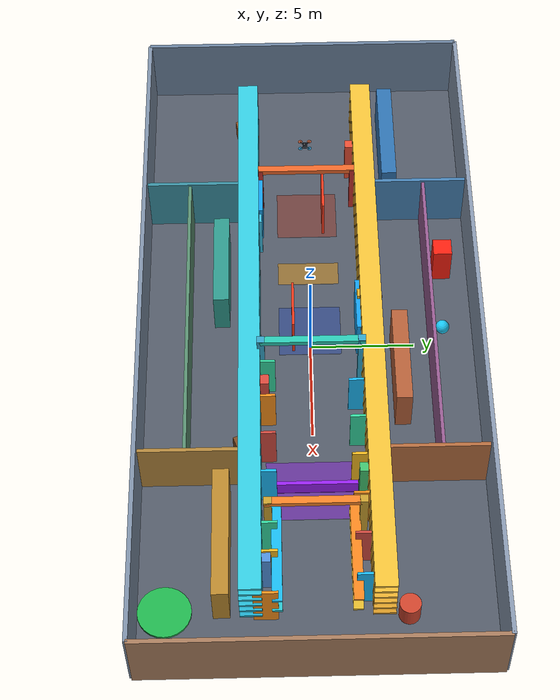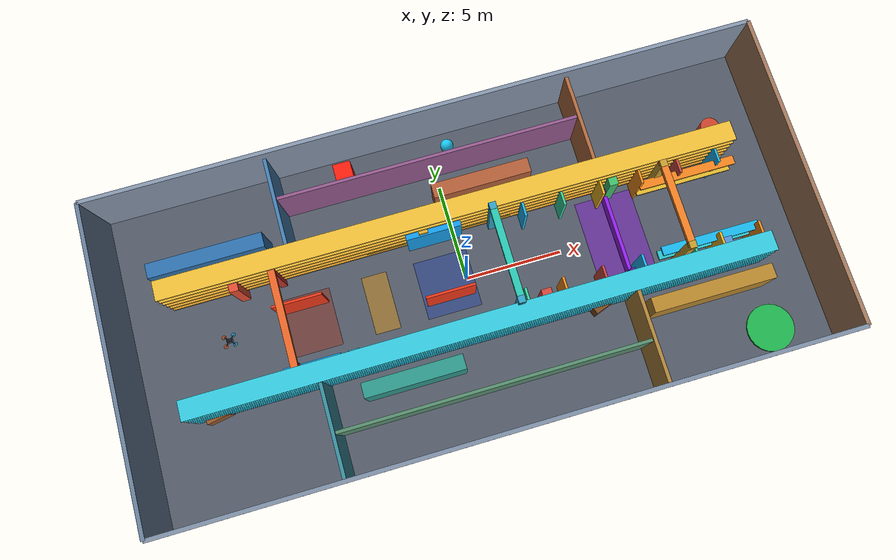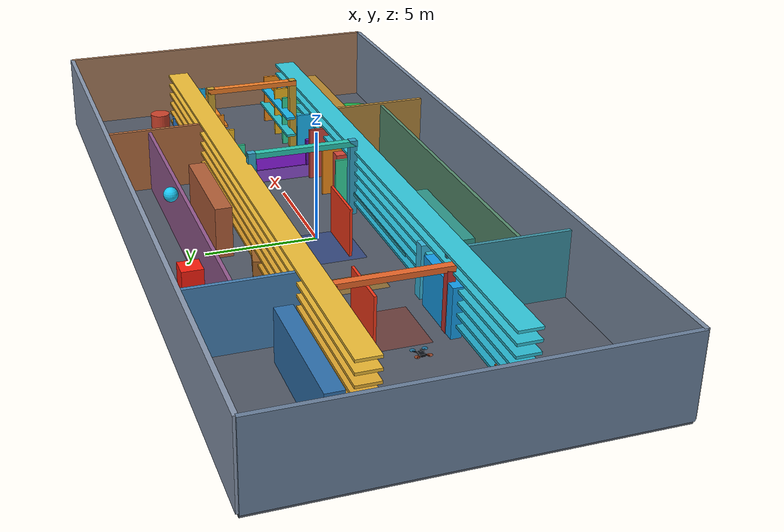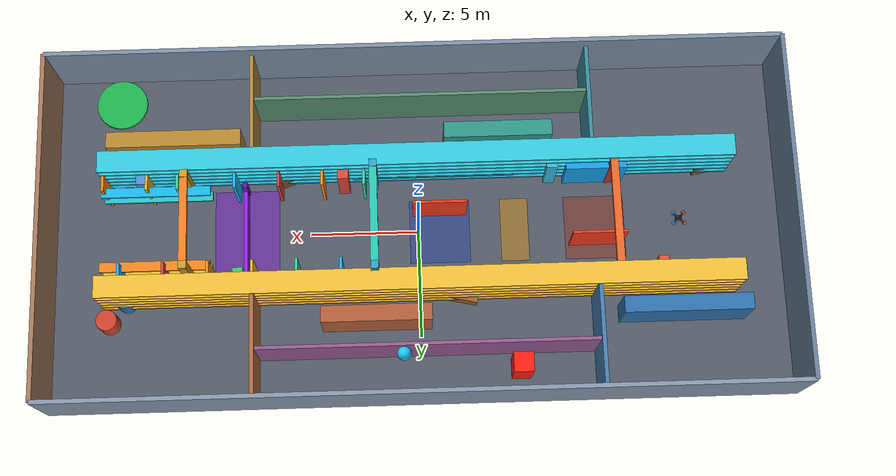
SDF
<sdf version="1.10">
 <world name="xq_complex_3d_warehouse">
  <model name="xq_complex_3d_shell">
   <static>true</static>
   <link name="shell">
    <collision name="floor_c">
     <pose>0 0 -0.08 0 0 0</pose>
     <geometry><box><size>34 16 0.16</size></box></geometry>
    </collision>
    <visual name="floor_v">
     <pose>0 0 -0.08 0 0 0</pose>
     <geometry><box><size>34 16 0.16</size></box></geometry>
     <material><diffuse>0.32 0.35 0.40 1</diffuse><specular>0.12 0.12 0.12 1</specular></material>
    </visual>
    <collision name="north_wall_c">
     <pose>0 8 1.8 0 0 0</pose>
     <geometry><box><size>34 0.20 3.6</size></box></geometry>
    </collision>
    <visual name="north_wall_v">
     <pose>0 8 1.8 0 0 0</pose>
     <geometry><box><size>34 0.20 3.6</size></box></geometry>
     <material><diffuse>0.53 0.59 0.68 1</diffuse></material>
    </visual>
    <collision name="south_wall_c">
     <pose>0 -8 1.8 0 0 0</pose>
     <geometry><box><size>34 0.20 3.6</size></box></geometry>
    </collision>
    <visual name="south_wall_v">
     <pose>0 -8 1.8 0 0 0</pose>
     <geometry><box><size>34 0.20 3.6</size></box></geometry>
     <material><diffuse>0.49 0.56 0.65 1</diffuse></material>
    </visual>
    <collision name="west_wall_c">
     <pose>-17 0 1.8 0 0 0</pose>
     <geometry><box><size>0.20 16 3.6</size></box></geometry>
    </collision>
    <visual name="west_wall_v">
     <pose>-17 0 1.8 0 0 0</pose>
     <geometry><box><size>0.20 16 3.6</size></box></geometry>
     <material><diffuse>0.41 0.50 0.61 1</diffuse></material>
    </visual>
    <collision name="east_wall_c">
     <pose>17 0 1.8 0 0 0</pose>
     <geometry><box><size>0.20 16 3.6</size></box></geometry>
    </collision>
    <visual name="east_wall_v">
     <pose>17 0 1.8 0 0 0</pose>
     <geometry><box><size>0.20 16 3.6</size></box></geometry>
     <material><diffuse>0.65 0.48 0.36 1</diffuse></material>
    </visual>
    <collision name="nw_partition_c">
     <pose>-8.0 5.25 1.5 0 0 0</pose>
     <geometry><box><size>0.18 5.3 3.0</size></box></geometry>
    </collision>
    <visual name="nw_partition_v">
     <pose>-8.0 5.25 1.5 0 0 0</pose>
     <geometry><box><size>0.18 5.3 3.0</size></box></geometry>
     <material><diffuse>0.27 0.50 0.70 1</diffuse></material>
    </visual>
    <collision name="sw_partition_c">
     <pose>-8.0 -5.25 1.5 0 0 0</pose>
     <geometry><box><size>0.18 5.3 3.0</size></box></geometry>
    </collision>
    <visual name="sw_partition_v">
     <pose>-8.0 -5.25 1.5 0 0 0</pose>
     <geometry><box><size>0.18 5.3 3.0</size></box></geometry>
     <material><diffuse>0.22 0.55 0.62 1</diffuse></material>
    </visual>
    <collision name="ne_partition_c">
     <pose>7.5 5.25 1.5 0 0 0</pose>
     <geometry><box><size>0.18 5.3 3.0</size></box></geometry>
    </collision>
    <visual name="ne_partition_v">
     <pose>7.5 5.25 1.5 0 0 0</pose>
     <geometry><box><size>0.18 5.3 3.0</size></box></geometry>
     <material><diffuse>0.70 0.42 0.24 1</diffuse></material>
    </visual>
    <collision name="se_partition_c">
     <pose>7.5 -5.25 1.5 0 0 0</pose>
     <geometry><box><size>0.18 5.3 3.0</size></box></geometry>
    </collision>
    <visual name="se_partition_v">
     <pose>7.5 -5.25 1.5 0 0 0</pose>
     <geometry><box><size>0.18 5.3 3.0</size></box></geometry>
     <material><diffuse>0.69 0.52 0.23 1</diffuse></material>
    </visual>
    <collision name="north_crosswall_c">
     <pose>-0.25 5.8 1.45 0 0 0</pose>
     <geometry><box><size>15.3 0.16 2.9</size></box></geometry>
    </collision>
    <visual name="north_crosswall_v">
     <pose>-0.25 5.8 1.45 0 0 0</pose>
     <geometry><box><size>15.3 0.16 2.9</size></box></geometry>
     <material><diffuse>0.58 0.35 0.56 1</diffuse></material>
    </visual>
    <collision name="south_crosswall_c">
     <pose>-0.25 -5.8 1.45 0 0 0</pose>
     <geometry><box><size>15.3 0.16 2.9</size></box></geometry>
    </collision>
    <visual name="south_crosswall_v">
     <pose>-0.25 -5.8 1.45 0 0 0</pose>
     <geometry><box><size>15.3 0.16 2.9</size></box></geometry>
     <material><diffuse>0.34 0.55 0.43 1</diffuse></material>
    </visual>
    <collision name="north_lower_observation_rack_c">
     <pose>0 2.90 0.55 0 0 0</pose>
     <geometry><box><size>29.0 1.00 0.12</size></box></geometry>
    </collision>
    <visual name="north_lower_observation_rack_v">
     <pose>0 2.90 0.55 0 0 0</pose>
     <geometry><box><size>29.0 1.00 0.12</size></box></geometry>
     <material><diffuse>0.82 0.58 0.14 1</diffuse></material>
    </visual>
    <collision name="south_lower_observation_rack_c">
     <pose>0 -2.90 0.55 0 0 0</pose>
     <geometry><box><size>29.0 1.00 0.12</size></box></geometry>
    </collision>
    <visual name="south_lower_observation_rack_v">
     <pose>0 -2.90 0.55 0 0 0</pose>
     <geometry><box><size>29.0 1.00 0.12</size></box></geometry>
     <material><diffuse>0.12 0.66 0.78 1</diffuse></material>
    </visual>
    <collision name="north_lower_middle_observation_rack_c">
     <pose>0 2.90 1.05 0 0 0</pose>
     <geometry><box><size>29.0 1.00 0.12</size></box></geometry>
    </collision>
    <visual name="north_lower_middle_observation_rack_v">
     <pose>0 2.90 1.05 0 0 0</pose>
     <geometry><box><size>29.0 1.00 0.12</size></box></geometry>
     <material><diffuse>0.85 0.62 0.16 1</diffuse></material>
    </visual>
    <collision name="south_lower_middle_observation_rack_c">
     <pose>0 -2.90 1.05 0 0 0</pose>
     <geometry><box><size>29.0 1.00 0.12</size></box></geometry>
    </collision>
    <visual name="south_lower_middle_observation_rack_v">
     <pose>0 -2.90 1.05 0 0 0</pose>
     <geometry><box><size>29.0 1.00 0.12</size></box></geometry>
     <material><diffuse>0.14 0.69 0.80 1</diffuse></material>
    </visual>
    <collision name="north_middle_observation_rack_c">
     <pose>0 2.90 1.55 0 0 0</pose>
     <geometry><box><size>29.0 1.00 0.12</size></box></geometry>
    </collision>
    <visual name="north_middle_observation_rack_v">
     <pose>0 2.90 1.55 0 0 0</pose>
     <geometry><box><size>29.0 1.00 0.12</size></box></geometry>
     <material><diffuse>0.88 0.65 0.18 1</diffuse></material>
    </visual>
    <collision name="south_middle_observation_rack_c">
     <pose>0 -2.90 1.55 0 0 0</pose>
     <geometry><box><size>29.0 1.00 0.12</size></box></geometry>
    </collision>
    <visual name="south_middle_observation_rack_v">
     <pose>0 -2.90 1.55 0 0 0</pose>
     <geometry><box><size>29.0 1.00 0.12</size></box></geometry>
     <material><diffuse>0.15 0.72 0.82 1</diffuse></material>
    </visual>
    <collision name="north_upper_middle_observation_rack_c">
     <pose>0 2.90 2.05 0 0 0</pose>
     <geometry><box><size>29.0 1.00 0.12</size></box></geometry>
    </collision>
    <visual name="north_upper_middle_observation_rack_v">
     <pose>0 2.90 2.05 0 0 0</pose>
     <geometry><box><size>29.0 1.00 0.12</size></box></geometry>
     <material><diffuse>0.90 0.68 0.19 1</diffuse></material>
    </visual>
    <collision name="south_upper_middle_observation_rack_c">
     <pose>0 -2.90 2.05 0 0 0</pose>
     <geometry><box><size>29.0 1.00 0.12</size></box></geometry>
    </collision>
    <visual name="south_upper_middle_observation_rack_v">
     <pose>0 -2.90 2.05 0 0 0</pose>
     <geometry><box><size>29.0 1.00 0.12</size></box></geometry>
     <material><diffuse>0.17 0.74 0.83 1</diffuse></material>
    </visual>
    <collision name="north_upper_observation_rack_c">
     <pose>0 2.90 2.55 0 0 0</pose>
     <geometry><box><size>29.0 1.00 0.12</size></box></geometry>
    </collision>
    <visual name="north_upper_observation_rack_v">
     <pose>0 2.90 2.55 0 0 0</pose>
     <geometry><box><size>29.0 1.00 0.12</size></box></geometry>
     <material><diffuse>0.92 0.72 0.20 1</diffuse></material>
    </visual>
    <collision name="south_upper_observation_rack_c">
     <pose>0 -2.90 2.55 0 0 0</pose>
     <geometry><box><size>29.0 1.00 0.12</size></box></geometry>
    </collision>
    <visual name="south_upper_observation_rack_v">
     <pose>0 -2.90 2.55 0 0 0</pose>
     <geometry><box><size>29.0 1.00 0.12</size></box></geometry>
     <material><diffuse>0.18 0.76 0.84 1</diffuse></material>
    </visual>
    <collision name="north_high_observation_rack_c">
     <pose>0 2.90 3.05 0 0 0</pose>
     <geometry><box><size>29.0 1.00 0.12</size></box></geometry>
    </collision>
    <visual name="north_high_observation_rack_v">
     <pose>0 2.90 3.05 0 0 0</pose>
     <geometry><box><size>29.0 1.00 0.12</size></box></geometry>
     <material><diffuse>0.94 0.75 0.22 1</diffuse></material>
    </visual>
    <collision name="south_high_observation_rack_c">
     <pose>0 -2.90 3.05 0 0 0</pose>
     <geometry><box><size>29.0 1.00 0.12</size></box></geometry>
    </collision>
    <visual name="south_high_observation_rack_v">
     <pose>0 -2.90 3.05 0 0 0</pose>
     <geometry><box><size>29.0 1.00 0.12</size></box></geometry>
     <material><diffuse>0.20 0.79 0.87 1</diffuse></material>
    </visual>
    <collision name="north_observation_shelf_c">
     <pose>1.0 2.60 0.99 0 0 0</pose>
     <geometry><box><size>4.0 0.45 0.12</size></box></geometry>
    </collision>
    <visual name="north_observation_shelf_v">
     <pose>1.0 2.60 0.99 0 0 0</pose>
     <geometry><box><size>4.0 0.45 0.12</size></box></geometry>
     <material><diffuse>0.82 0.72 0.22 1</diffuse></material>
    </visual>
    <collision name="south_observation_shelf_c">
     <pose>1.0 -2.60 0.99 0 0 0</pose>
     <geometry><box><size>4.0 0.45 0.12</size></box></geometry>
    </collision>
    <visual name="south_observation_shelf_v">
     <pose>1.0 -2.60 0.99 0 0 0</pose>
     <geometry><box><size>4.0 0.45 0.12</size></box></geometry>
     <material><diffuse>0.24 0.72 0.78 1</diffuse></material>
    </visual>
    <collision name="north_midwest_observation_shelf_c">
     <pose>-2.75 2.60 0.99 0 0 0</pose>
     <geometry><box><size>3.50 0.45 0.12</size></box></geometry>
    </collision>
    <visual name="north_midwest_observation_shelf_v">
     <pose>-2.75 2.60 0.99 0 0 0</pose>
     <geometry><box><size>3.50 0.45 0.12</size></box></geometry>
     <material><diffuse>0.84 0.70 0.18 1</diffuse></material>
    </visual>
    <collision name="south_midwest_observation_shelf_c">
     <pose>-2.75 -2.60 0.99 0 0 0</pose>
     <geometry><box><size>3.50 0.45 0.12</size></box></geometry>
    </collision>
    <visual name="south_midwest_observation_shelf_v">
     <pose>-2.75 -2.60 0.99 0 0 0</pose>
     <geometry><box><size>3.50 0.45 0.12</size></box></geometry>
     <material><diffuse>0.18 0.72 0.78 1</diffuse></material>
    </visual>
    <collision name="north_x_board1_c">
     <pose>3.55 2.25 1.25 0 0 0</pose>
     <geometry><box><size>0.12 1.10 2.50</size></box></geometry>
    </collision>
    <visual name="north_x_board1_v">
     <pose>3.55 2.25 1.25 0 0 0</pose>
     <geometry><box><size>0.12 1.10 2.50</size></box></geometry>
     <material><diffuse>0.10 0.72 0.96 1</diffuse><emissive>0.01 0.08 0.14 1</emissive></material>
    </visual>
    <collision name="south_x_board0_c">
     <pose>2.45 -2.25 1.25 0 0 0</pose>
     <geometry><box><size>0.12 1.10 2.50</size></box></geometry>
    </collision>
    <visual name="south_x_board0_v">
     <pose>2.45 -2.25 1.25 0 0 0</pose>
     <geometry><box><size>0.12 1.10 2.50</size></box></geometry>
     <material><diffuse>0.20 0.84 0.62 1</diffuse><emissive>0.01 0.12 0.07 1</emissive></material>
    </visual>
    <collision name="south_x_board1_c">
     <pose>4.35 -2.25 1.25 0 0 0</pose>
     <geometry><box><size>0.12 1.10 2.50</size></box></geometry>
    </collision>
    <visual name="south_x_board1_v">
     <pose>4.35 -2.25 1.25 0 0 0</pose>
     <geometry><box><size>0.12 1.10 2.50</size></box></geometry>
     <material><diffuse>0.96 0.56 0.10 1</diffuse><emissive>0.14 0.05 0.01 1</emissive></material>
    </visual>
    <collision name="north_x_board2_c">
     <pose>5.55 2.25 1.25 0 0 0</pose>
     <geometry><box><size>0.12 1.10 2.50</size></box></geometry>
    </collision>
    <visual name="north_x_board2_v">
     <pose>5.55 2.25 1.25 0 0 0</pose>
     <geometry><box><size>0.12 1.10 2.50</size></box></geometry>
     <material><diffuse>0.20 0.84 0.62 1</diffuse><emissive>0.01 0.12 0.07 1</emissive></material>
    </visual>
    <collision name="south_x_board2_c">
     <pose>6.35 -2.25 1.25 0 0 0</pose>
     <geometry><box><size>0.12 1.10 2.50</size></box></geometry>
    </collision>
    <visual name="south_x_board2_v">
     <pose>6.35 -2.25 1.25 0 0 0</pose>
     <geometry><box><size>0.12 1.10 2.50</size></box></geometry>
     <material><diffuse>0.80 0.28 0.24 1</diffuse><emissive>0.10 0.02 0.02 1</emissive></material>
    </visual>
    <collision name="north_x_board3_c">
     <pose>7.55 2.25 1.25 0 0 0</pose>
     <geometry><box><size>0.12 1.10 2.50</size></box></geometry>
    </collision>
    <visual name="north_x_board3_v">
     <pose>7.55 2.25 1.25 0 0 0</pose>
     <geometry><box><size>0.12 1.10 2.50</size></box></geometry>
     <material><diffuse>0.94 0.72 0.12 1</diffuse><emissive>0.12 0.08 0.01 1</emissive></material>
    </visual>
    <collision name="south_x_board3_c">
     <pose>8.35 -2.25 1.25 0 0 0</pose>
     <geometry><box><size>0.12 1.10 2.50</size></box></geometry>
    </collision>
    <visual name="south_x_board3_v">
     <pose>8.35 -2.25 1.25 0 0 0</pose>
     <geometry><box><size>0.12 1.10 2.50</size></box></geometry>
     <material><diffuse>0.10 0.72 0.96 1</diffuse><emissive>0.01 0.08 0.14 1</emissive></material>
    </visual>
    <collision name="north_x_board4_c">
     <pose>9.55 2.25 1.25 0 0 0</pose>
     <geometry><box><size>0.12 1.10 2.50</size></box></geometry>
    </collision>
    <visual name="north_x_board4_v">
     <pose>9.55 2.25 1.25 0 0 0</pose>
     <geometry><box><size>0.12 1.10 2.50</size></box></geometry>
     <material><diffuse>0.96 0.56 0.10 1</diffuse><emissive>0.14 0.05 0.01 1</emissive></material>
    </visual>
    <collision name="south_x_board4_c">
     <pose>10.95 -2.25 1.25 0 0 0</pose>
     <geometry><box><size>0.12 1.10 2.50</size></box></geometry>
    </collision>
    <visual name="south_x_board4_v">
     <pose>10.95 -2.25 1.25 0 0 0</pose>
     <geometry><box><size>0.12 1.10 2.50</size></box></geometry>
     <material><diffuse>0.20 0.84 0.62 1</diffuse><emissive>0.01 0.12 0.07 1</emissive></material>
    </visual>
    <collision name="north_x_board5_c">
     <pose>11.55 2.25 1.25 0 0 0</pose>
     <geometry><box><size>0.12 1.10 2.50</size></box></geometry>
    </collision>
    <visual name="north_x_board5_v">
     <pose>11.55 2.25 1.25 0 0 0</pose>
     <geometry><box><size>0.12 1.10 2.50</size></box></geometry>
     <material><diffuse>0.80 0.28 0.24 1</diffuse><emissive>0.10 0.02 0.02 1</emissive></material>
    </visual>
    <collision name="south_x_board5_c">
     <pose>12.35 -2.25 1.25 0 0 0</pose>
     <geometry><box><size>0.12 1.10 2.50</size></box></geometry>
    </collision>
    <visual name="south_x_board5_v">
     <pose>12.35 -2.25 1.25 0 0 0</pose>
     <geometry><box><size>0.12 1.10 2.50</size></box></geometry>
     <material><diffuse>0.94 0.72 0.12 1</diffuse><emissive>0.12 0.08 0.01 1</emissive></material>
    </visual>
    <collision name="north_x_board6_c">
     <pose>13.55 2.25 1.25 0 0 0</pose>
     <geometry><box><size>0.12 1.10 2.50</size></box></geometry>
    </collision>
    <visual name="north_x_board6_v">
     <pose>13.55 2.25 1.25 0 0 0</pose>
     <geometry><box><size>0.12 1.10 2.50</size></box></geometry>
     <material><diffuse>0.10 0.72 0.96 1</diffuse><emissive>0.01 0.08 0.14 1</emissive></material>
    </visual>
    <collision name="south_x_board6_c">
     <pose>14.35 -2.25 1.25 0 0 0</pose>
     <geometry><box><size>0.12 1.10 2.50</size></box></geometry>
    </collision>
    <visual name="south_x_board6_v">
     <pose>14.35 -2.25 1.25 0 0 0</pose>
     <geometry><box><size>0.12 1.10 2.50</size></box></geometry>
     <material><diffuse>0.96 0.56 0.10 1</diffuse><emissive>0.14 0.05 0.01 1</emissive></material>
    </visual>
    <collision name="north_final_observation_shelf_c">
     <pose>12.0 1.75 0.99 0 0 0</pose>
     <geometry><box><size>5.0 0.45 0.12</size></box></geometry>
    </collision>
    <visual name="north_final_observation_shelf_v">
     <pose>12.0 1.75 0.99 0 0 0</pose>
     <geometry><box><size>5.0 0.45 0.12</size></box></geometry>
     <material><diffuse>0.88 0.72 0.18 1</diffuse></material>
    </visual>
    <collision name="south_final_observation_shelf_c">
     <pose>12.0 -1.75 0.99 0 0 0</pose>
     <geometry><box><size>5.0 0.45 0.12</size></box></geometry>
    </collision>
    <visual name="south_final_observation_shelf_v">
     <pose>12.0 -1.75 0.99 0 0 0</pose>
     <geometry><box><size>5.0 0.45 0.12</size></box></geometry>
     <material><diffuse>0.16 0.76 0.80 1</diffuse></material>
    </visual>
    <collision name="north_final_upper_observation_shelf_c">
     <pose>12.0 1.75 1.90 0 0 0</pose>
     <geometry><box><size>5.0 0.45 0.12</size></box></geometry>
    </collision>
    <visual name="north_final_upper_observation_shelf_v">
     <pose>12.0 1.75 1.90 0 0 0</pose>
     <geometry><box><size>5.0 0.45 0.12</size></box></geometry>
     <material><diffuse>0.95 0.52 0.12 1</diffuse></material>
    </visual>
    <collision name="south_final_upper_observation_shelf_c">
     <pose>12.0 -1.75 1.90 0 0 0</pose>
     <geometry><box><size>5.0 0.45 0.12</size></box></geometry>
    </collision>
    <visual name="south_final_upper_observation_shelf_v">
     <pose>12.0 -1.75 1.90 0 0 0</pose>
     <geometry><box><size>5.0 0.45 0.12</size></box></geometry>
     <material><diffuse>0.10 0.72 0.92 1</diffuse></material>
    </visual>
    <collision name="integrity_panel_west_c">
     <pose>-8.25 0.81 1.20 0 0 0</pose>
     <geometry><box><size>2.50 0.12 2.20</size></box></geometry>
    </collision>
    <visual name="integrity_panel_west_v">
     <pose>-8.25 0.81 1.20 0 0 0</pose>
     <geometry><box><size>2.50 0.12 2.20</size></box></geometry>
     <material><diffuse>0.96 0.22 0.10 1</diffuse><emissive>0.16 0.02 0.01 1</emissive></material>
    </visual>
    <collision name="geometry_fins_west_c">
     <pose>-8.25 -2.43 1.10 0 0 0</pose>
     <geometry><box><size>2.80 0.45 2.20</size></box></geometry>
    </collision>
    <visual name="geometry_fins_west_v">
     <pose>-8.25 -2.43 1.10 0 0 0</pose>
     <geometry><box><size>2.80 0.45 2.20</size></box></geometry>
     <material><diffuse>0.08 0.62 0.92 1</diffuse><emissive>0.01 0.08 0.16 1</emissive></material>
    </visual>
    <collision name="integrity_panel_east_c">
     <pose>-1.0 -0.81 1.20 0 0 0</pose>
     <geometry><box><size>2.50 0.12 2.20</size></box></geometry>
    </collision>
    <visual name="integrity_panel_east_v">
     <pose>-1.0 -0.81 1.20 0 0 0</pose>
     <geometry><box><size>2.50 0.12 2.20</size></box></geometry>
     <material><diffuse>0.96 0.22 0.10 1</diffuse><emissive>0.16 0.02 0.01 1</emissive></material>
    </visual>
    <collision name="geometry_fins_east_c">
     <pose>-1.0 2.43 1.10 0 0 0</pose>
     <geometry><box><size>2.80 0.45 2.20</size></box></geometry>
    </collision>
    <visual name="geometry_fins_east_v">
     <pose>-1.0 2.43 1.10 0 0 0</pose>
     <geometry><box><size>2.80 0.45 2.20</size></box></geometry>
     <material><diffuse>0.08 0.62 0.92 1</diffuse><emissive>0.01 0.08 0.16 1</emissive></material>
    </visual>
    <visual name="west_integrity_zone_v">
     <pose>-8.25 0 0.015 0 0 0</pose>
     <geometry><box><size>2.8 3.0 0.018</size></box></geometry>
     <material><diffuse>0.60 0.16 0.08 0.44</diffuse><emissive>0.07 0.01 0.00 1</emissive></material>
    </visual>
    <visual name="dynamic_crossing_zone_v">
     <pose>-4.5 0 0.016 0 0 0</pose>
     <geometry><box><size>1.3 3.0 0.020</size></box></geometry>
     <material><diffuse>0.86 0.56 0.04 0.48</diffuse><emissive>0.10 0.05 0.00 1</emissive></material>
    </visual>
    <visual name="east_integrity_zone_v">
     <pose>-1.0 0 0.015 0 0 0</pose>
     <geometry><box><size>2.8 3.0 0.018</size></box></geometry>
     <material><diffuse>0.10 0.24 0.66 0.44</diffuse><emissive>0.01 0.03 0.10 1</emissive></material>
    </visual>
    <collision name="spatial_integrity_hurdle_c">
     <pose>8.00 0 0.375 0 0 0</pose>
     <geometry><box><size>0.18 4.00 0.75</size></box></geometry>
    </collision>
    <visual name="spatial_integrity_hurdle_v">
     <pose>8.00 0 0.375 0 0 0</pose>
     <geometry><box><size>0.18 4.00 0.75</size></box></geometry>
     <material><diffuse>0.58 0.12 0.92 1</diffuse><emissive>0.12 0.01 0.24 1</emissive></material>
    </visual>
    <collision name="spatial_deck_north_leg_c">
     <pose>8.00 2.15 0.65 0 0 0</pose>
     <geometry><box><size>0.24 0.24 1.30</size></box></geometry>
    </collision>
    <visual name="spatial_deck_north_leg_v">
     <pose>8.00 2.15 0.65 0 0 0</pose>
     <geometry><box><size>0.24 0.24 1.30</size></box></geometry>
     <material><diffuse>0.40 0.08 0.70 1</diffuse></material>
    </visual>
    <collision name="spatial_deck_south_leg_c">
     <pose>8.00 -2.15 0.65 0 0 0</pose>
     <geometry><box><size>0.24 0.24 1.30</size></box></geometry>
    </collision>
    <visual name="spatial_deck_south_leg_v">
     <pose>8.00 -2.15 0.65 0 0 0</pose>
     <geometry><box><size>0.24 0.24 1.30</size></box></geometry>
     <material><diffuse>0.40 0.08 0.70 1</diffuse></material>
    </visual>
    <visual name="spatial_integrity_zone_v">
     <pose>8.00 0 0.017 0 0 0</pose>
     <geometry><box><size>3.00 4.40 0.022</size></box></geometry>
     <material><diffuse>0.50 0.08 0.82 0.48</diffuse><emissive>0.08 0.00 0.15 1</emissive></material>
    </visual>
    <collision name="rack_nw_c">
     <pose>-12.0 4.2 1.15 0 0 0</pose>
     <geometry><box><size>5.8 0.75 2.3</size></box></geometry>
    </collision>
    <visual name="rack_nw_v">
     <pose>-12.0 4.2 1.15 0 0 0</pose>
     <geometry><box><size>5.8 0.75 2.3</size></box></geometry>
     <material><diffuse>0.18 0.44 0.68 1</diffuse></material>
    </visual>
    <collision name="rack_sw_c">
     <pose>-3.8 -4.25 1.15 0 0 0</pose>
     <geometry><box><size>5.0 0.75 2.3</size></box></geometry>
    </collision>
    <visual name="rack_sw_v">
     <pose>-3.8 -4.25 1.15 0 0 0</pose>
     <geometry><box><size>5.0 0.75 2.3</size></box></geometry>
     <material><diffuse>0.18 0.59 0.54 1</diffuse></material>
    </visual>
    <collision name="rack_ne_c">
     <pose>2.0 4.25 1.15 0 0 0</pose>
     <geometry><box><size>5.0 0.75 2.3</size></box></geometry>
    </collision>
    <visual name="rack_ne_v">
     <pose>2.0 4.25 1.15 0 0 0</pose>
     <geometry><box><size>5.0 0.75 2.3</size></box></geometry>
     <material><diffuse>0.70 0.37 0.22 1</diffuse></material>
    </visual>
    <collision name="rack_se_c">
     <pose>11.2 -4.2 1.15 0 0 0</pose>
     <geometry><box><size>6.2 0.75 2.3</size></box></geometry>
    </collision>
    <visual name="rack_se_v">
     <pose>11.2 -4.2 1.15 0 0 0</pose>
     <geometry><box><size>6.2 0.75 2.3</size></box></geometry>
     <material><diffuse>0.72 0.53 0.18 1</diffuse></material>
    </visual>
    <collision name="p1_c">
     <pose>-11.0 2.25 1.2 0 0 0</pose>
     <geometry><box><size>0.45 0.45 2.4</size></box></geometry>
    </collision>
    <visual name="p1_v">
     <pose>-11.0 2.25 1.2 0 0 0</pose>
     <geometry><box><size>0.45 0.45 2.4</size></box></geometry>
     <material><diffuse>0.90 0.30 0.20 1</diffuse></material>
    </visual>
    <collision name="p2_c">
     <pose>-6.2 -2.50 1.2 0 0 0</pose>
     <geometry><box><size>0.50 0.50 2.4</size></box></geometry>
    </collision>
    <visual name="p2_v">
     <pose>-6.2 -2.50 1.2 0 0 0</pose>
     <geometry><box><size>0.50 0.50 2.4</size></box></geometry>
     <material><diffuse>0.22 0.72 0.86 1</diffuse></material>
    </visual>
    <collision name="p3_c">
     <pose>-1.5 2.50 1.2 0 0 0</pose>
     <geometry><box><size>0.45 0.45 2.4</size></box></geometry>
    </collision>
    <visual name="p3_v">
     <pose>-1.5 2.50 1.2 0 0 0</pose>
     <geometry><box><size>0.45 0.45 2.4</size></box></geometry>
     <material><diffuse>0.88 0.68 0.16 1</diffuse></material>
    </visual>
    <collision name="p4_c">
     <pose>3.4 -2.25 1.2 0 0 0</pose>
     <geometry><box><size>0.50 0.50 2.4</size></box></geometry>
    </collision>
    <visual name="p4_v">
     <pose>3.4 -2.25 1.2 0 0 0</pose>
     <geometry><box><size>0.50 0.50 2.4</size></box></geometry>
     <material><diffuse>0.84 0.28 0.23 1</diffuse></material>
    </visual>
    <collision name="p5_c">
     <pose>8.2 2.25 1.2 0 0 0</pose>
     <geometry><box><size>0.45 0.45 2.4</size></box></geometry>
    </collision>
    <visual name="p5_v">
     <pose>8.2 2.25 1.2 0 0 0</pose>
     <geometry><box><size>0.45 0.45 2.4</size></box></geometry>
     <material><diffuse>0.25 0.75 0.43 1</diffuse></material>
    </visual>
    <collision name="p6_c">
     <pose>12.6 -2.25 1.2 0 0 0</pose>
     <geometry><box><size>0.50 0.50 2.4</size></box></geometry>
    </collision>
    <visual name="p6_v">
     <pose>12.6 -2.25 1.2 0 0 0</pose>
     <geometry><box><size>0.50 0.50 2.4</size></box></geometry>
     <material><diffuse>0.31 0.56 0.85 1</diffuse></material>
    </visual>
    <collision name="gate1_n_c">
     <pose>-9.0 2.35 1.4 0 0 0</pose>
     <geometry><box><size>0.35 0.35 2.8</size></box></geometry>
    </collision>
    <visual name="gate1_n_v">
     <pose>-9.0 2.35 1.4 0 0 0</pose>
     <geometry><box><size>0.35 0.35 2.8</size></box></geometry>
     <material><diffuse>0.75 0.20 0.18 1</diffuse></material>
    </visual>
    <collision name="gate1_s_c">
     <pose>-9.0 -2.35 1.4 0 0 0</pose>
     <geometry><box><size>0.35 0.35 2.8</size></box></geometry>
    </collision>
    <visual name="gate1_s_v">
     <pose>-9.0 -2.35 1.4 0 0 0</pose>
     <geometry><box><size>0.35 0.35 2.8</size></box></geometry>
     <material><diffuse>0.75 0.20 0.18 1</diffuse></material>
    </visual>
    <collision name="gate1_top_c">
     <pose>-9.0 0 2.75 0 0 0</pose>
     <geometry><box><size>0.35 5.05 0.25</size></box></geometry>
    </collision>
    <visual name="gate1_top_v">
     <pose>-9.0 0 2.75 0 0 0</pose>
     <geometry><box><size>0.35 5.05 0.25</size></box></geometry>
     <material><diffuse>0.92 0.40 0.16 1</diffuse></material>
    </visual>
    <collision name="gate2_n_c">
     <pose>2.0 2.35 1.8 0 0 0</pose>
     <geometry><box><size>0.35 0.35 3.6</size></box></geometry>
    </collision>
    <visual name="gate2_n_v">
     <pose>2.0 2.35 1.8 0 0 0</pose>
     <geometry><box><size>0.35 0.35 3.6</size></box></geometry>
     <material><diffuse>0.20 0.64 0.78 1</diffuse></material>
    </visual>
    <collision name="gate2_s_c">
     <pose>2.0 -2.35 1.8 0 0 0</pose>
     <geometry><box><size>0.35 0.35 3.6</size></box></geometry>
    </collision>
    <visual name="gate2_s_v">
     <pose>2.0 -2.35 1.8 0 0 0</pose>
     <geometry><box><size>0.35 0.35 3.6</size></box></geometry>
     <material><diffuse>0.20 0.64 0.78 1</diffuse></material>
    </visual>
    <collision name="gate2_top_c">
     <pose>2.0 0 3.45 0 0 0</pose>
     <geometry><box><size>0.35 5.05 0.25</size></box></geometry>
    </collision>
    <visual name="gate2_top_v">
     <pose>2.0 0 3.45 0 0 0</pose>
     <geometry><box><size>0.35 5.05 0.25</size></box></geometry>
     <material><diffuse>0.16 0.78 0.70 1</diffuse></material>
    </visual>
    <collision name="gate3_n_c">
     <pose>10.5 2.10 1.8 0 0 0</pose>
     <geometry><box><size>0.35 0.35 3.6</size></box></geometry>
    </collision>
    <visual name="gate3_n_v">
     <pose>10.5 2.10 1.8 0 0 0</pose>
     <geometry><box><size>0.35 0.35 3.6</size></box></geometry>
     <material><diffuse>0.78 0.62 0.18 1</diffuse></material>
    </visual>
    <collision name="gate3_s_c">
     <pose>10.5 -2.10 1.8 0 0 0</pose>
     <geometry><box><size>0.35 0.35 3.6</size></box></geometry>
    </collision>
    <visual name="gate3_s_v">
     <pose>10.5 -2.10 1.8 0 0 0</pose>
     <geometry><box><size>0.35 0.35 3.6</size></box></geometry>
     <material><diffuse>0.78 0.62 0.18 1</diffuse></material>
    </visual>
    <collision name="gate3_top_c">
     <pose>10.5 0 3.45 0 0 0</pose>
     <geometry><box><size>0.35 4.55 0.25</size></box></geometry>
    </collision>
    <visual name="gate3_top_v">
     <pose>10.5 0 3.45 0 0 0</pose>
     <geometry><box><size>0.35 4.55 0.25</size></box></geometry>
     <material><diffuse>0.95 0.50 0.15 1</diffuse></material>
    </visual>
    <collision name="crate1_c">
     <pose>-13.5 -3.0 0.45 0 0 0.18</pose>
     <geometry><box><size>1.2 1.0 0.9</size></box></geometry>
    </collision>
    <visual name="crate1_v">
     <pose>-13.5 -3.0 0.45 0 0 0.18</pose>
     <geometry><box><size>1.2 1.0 0.9</size></box></geometry>
     <material><diffuse>0.58 0.34 0.16 1</diffuse></material>
    </visual>
    <collision name="crate2_c">
     <pose>-2.0 3.0 0.35 0 0 -0.22</pose>
     <geometry><box><size>1.4 0.9 0.7</size></box></geometry>
    </collision>
    <visual name="crate2_v">
     <pose>-2.0 3.0 0.35 0 0 -0.22</pose>
     <geometry><box><size>1.4 0.9 0.7</size></box></geometry>
     <material><diffuse>0.62 0.38 0.15 1</diffuse></material>
    </visual>
    <collision name="crate3_c">
     <pose>6.0 -3.0 0.50 0 0 0.35</pose>
     <geometry><box><size>1.1 1.1 1.0</size></box></geometry>
    </collision>
    <visual name="crate3_v">
     <pose>6.0 -3.0 0.50 0 0 0.35</pose>
     <geometry><box><size>1.1 1.1 1.0</size></box></geometry>
     <material><diffuse>0.48 0.29 0.13 1</diffuse></material>
    </visual>
    <collision name="barrel1_c">
     <pose>13.5 3.0 0.55 0 0 0</pose>
     <geometry><cylinder><radius>0.48</radius><length>1.1</length></cylinder></geometry>
    </collision>
    <visual name="barrel1_v">
     <pose>13.5 3.0 0.55 0 0 0</pose>
     <geometry><cylinder><radius>0.48</radius><length>1.1</length></cylinder></geometry>
     <material><diffuse>0.15 0.44 0.74 1</diffuse></material>
    </visual>
    <collision name="barrel2_c">
     <pose>14.3 4.0 0.55 0 0 0</pose>
     <geometry><cylinder><radius>0.48</radius><length>1.1</length></cylinder></geometry>
    </collision>
    <visual name="barrel2_v">
     <pose>14.3 4.0 0.55 0 0 0</pose>
     <geometry><cylinder><radius>0.48</radius><length>1.1</length></cylinder></geometry>
     <material><diffuse>0.80 0.26 0.17 1</diffuse></material>
    </visual>
    <collision name="landing_pad_c">
     <pose>14.0 -6.7 0.06 0 0 0</pose>
     <geometry><cylinder><radius>1.2</radius><length>0.12</length></cylinder></geometry>
    </collision>
    <visual name="landing_pad_v">
     <pose>14.0 -6.7 0.06 0 0 0</pose>
     <geometry><cylinder><radius>1.2</radius><length>0.12</length></cylinder></geometry>
     <material><diffuse>0.12 0.70 0.30 1</diffuse><emissive>0.02 0.18 0.06 1</emissive></material>
    </visual>
   </link>
  </model>
  <model name="xq_p12_moving_obstacle">
   <static>false</static>
   <pose>-4.5 6.6 1.0 0 0 0</pose>
   <link name="body">
    <gravity>false</gravity>
    <inertial><mass>20</mass><inertia><ixx>8</ixx><iyy>8</iyy><izz>4</izz></inertia></inertial>
    <collision name="body_c"><geometry><box><size>0.9 0.9 2.0</size></box></geometry></collision>
    <visual name="body_v">
     <geometry><box><size>0.9 0.9 2.0</size></box></geometry>
     <material><diffuse>0.98 0.12 0.06 1</diffuse><emissive>0.30 0.02 0.01 1</emissive></material>
    </visual>
   </link>
   <plugin filename="libxq_p12_obstacle_motion_system.so" name="xq_gz_bridge::P12ObstacleMotionSystem">
    <x_m>-4.5</x_m>
    <park_y_m>6.6</park_y_m>
    <blocked_y_m>0.0</blocked_y_m>
    <z_m>1.0</z_m>
    <enter_start_s>24.0</enter_start_s>
    <enter_end_s>28.0</enter_end_s>
    <leave_start_s>44.0</leave_start_s>
    <leave_end_s>48.0</leave_end_s>
   </plugin>
  </model>
  <model name="xq_overhead_inspector">
   <static>false</static>
   <pose>0.8 6.2 2.65 0 0 0</pose>
   <link name="body">
    <gravity>false</gravity>
    <inertial><mass>8</mass><inertia><ixx>2</ixx><iyy>2</iyy><izz>2</izz></inertia></inertial>
    <collision name="body_c"><geometry><sphere><radius>0.32</radius></sphere></geometry></collision>
    <visual name="body_v">
     <geometry><sphere><radius>0.32</radius></sphere></geometry>
     <material><diffuse>0.10 0.78 0.95 1</diffuse><emissive>0.02 0.35 0.50 1</emissive></material>
    </visual>
   </link>
   <plugin filename="libxq_p12_obstacle_motion_system.so" name="xq_gz_bridge::P12ObstacleMotionSystem">
    <x_m>0.8</x_m>
    <park_y_m>6.2</park_y_m>
    <blocked_y_m>0.0</blocked_y_m>
    <z_m>2.65</z_m>
    <enter_start_s>55.0</enter_start_s>
    <enter_end_s>61.0</enter_end_s>
    <leave_start_s>72.0</leave_start_s>
    <leave_end_s>78.0</leave_end_s>
   </plugin>
  </model>
  <include><name>xq_agent_01</name><uri>model://xq_iris_mid360</uri><pose>-12 0 1.2 0 0 0</pose></include>
 </world>
</sdf>
